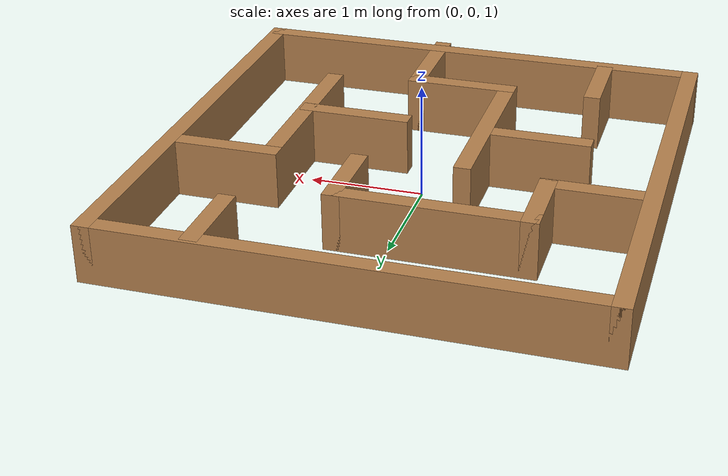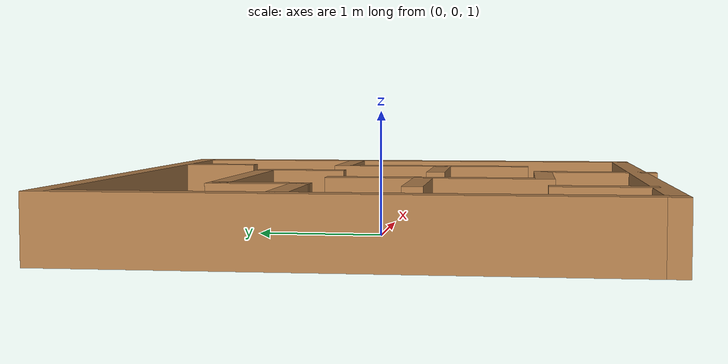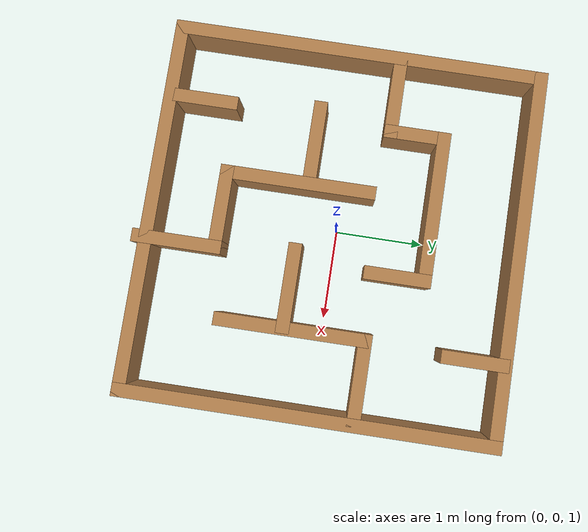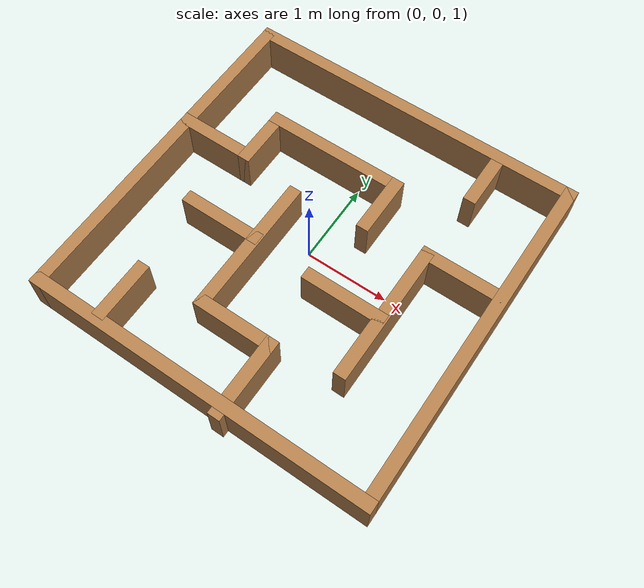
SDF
<?xml version='1.0'?>
<sdf version='1.7'>
  <model name='maze.world'>
    <pose>0.036064 -0.058671 0 0 -0 0</pose>
    <link name='Wall_12'>
      <collision name='Wall_12_Collision'>
        <geometry>
          <box>
            <size>4.25 0.15 .5</size>
          </box>
        </geometry>
        <pose>0 0 1.25 0 -0 0</pose>
      </collision>
      <visual name='Wall_12_Visual'>
        <pose>0 0 1.25 0 -0 0</pose>
        <geometry>
          <box>
            <size>4.25 0.15 .5</size>
          </box>
        </geometry>
        <material>
          <script>
            <uri>file://media/materials/scripts/gazebo.material</uri>
            <name>Gazebo/Wood</name>
          </script>
          <ambient>1 1 1 1</ambient>
        </material>
        <meta>
          <layer>0</layer>
        </meta>
      </visual>
      <pose>0 2.09 0 0 -0 0</pose>
    </link>
    <link name='Wall_13'>
      <collision name='Wall_13_Collision'>
        <geometry>
          <box>
            <size>4.25 0.15 .5</size>
          </box>
        </geometry>
        <pose>0 0 1.25 0 -0 0</pose>
      </collision>
      <visual name='Wall_13_Visual'>
        <pose>0 0 1.25 0 -0 0</pose>
        <geometry>
          <box>
            <size>4.25 0.15 .5</size>
          </box>
        </geometry>
        <material>
          <script>
            <uri>file://media/materials/scripts/gazebo.material</uri>
            <name>Gazebo/Wood</name>
          </script>
          <ambient>1 1 1 1</ambient>
        </material>
        <meta>
          <layer>0</layer>
        </meta>
      </visual>
      <pose>2.05 0.04 0 0 -0 -1.5708</pose>
    </link>
    <link name='Wall_14'>
      <collision name='Wall_14_Collision'>
        <geometry>
          <box>
            <size>4.25 0.15 .5</size>
          </box>
        </geometry>
        <pose>0 0 1.25 0 -0 0</pose>
      </collision>
      <visual name='Wall_14_Visual'>
        <pose>0 0 1.25 0 -0 0</pose>
        <geometry>
          <box>
            <size>4.25 0.15 .5</size>
          </box>
        </geometry>
        <material>
          <script>
            <uri>file://media/materials/scripts/gazebo.material</uri>
            <name>Gazebo/Wood</name>
          </script>
          <ambient>1 1 1 1</ambient>
        </material>
        <meta>
          <layer>0</layer>
        </meta>
      </visual>
      <pose>0 -2.01 0 0 -0 3.14159</pose>
    </link>
    <link name='Wall_15'>
      <collision name='Wall_15_Collision'>
        <geometry>
          <box>
            <size>4.25 0.15 .5</size>
          </box>
        </geometry>
        <pose>0 0 1.25 0 -0 0</pose>
      </collision>
      <visual name='Wall_15_Visual'>
        <pose>0 0 1.25 0 -0 0</pose>
        <geometry>
          <box>
            <size>4.25 0.15 .5</size>
          </box>
        </geometry>
        <material>
          <script>
            <uri>file://media/materials/scripts/gazebo.material</uri>
            <name>Gazebo/Wood</name>
          </script>
          <ambient>1 1 1 1</ambient>
        </material>
        <meta>
          <layer>0</layer>
        </meta>
      </visual>
      <pose>-2.05 0.04 0 0 -0 1.5708</pose>
    </link>
    <link name='Wall_22'>
      <collision name='Wall_22_Collision'>
        <geometry>
          <box>
            <size>0.75 0.15 0.5</size>
          </box>
        </geometry>
        <pose>0 0 1.25 0 -0 0</pose>
      </collision>
      <visual name='Wall_22_Visual'>
        <pose>0 0 1.25 0 -0 0</pose>
        <geometry>
          <box>
            <size>0.75 0.15 0.5</size>
          </box>
        </geometry>
        <material>
          <script>
            <uri>file://media/materials/scripts/gazebo.material</uri>
            <name>Gazebo/Wood</name>
          </script>
          <ambient>1 1 1 1</ambient>
        </material>
        <meta>
          <layer>0</layer>
        </meta>
      </visual>
      <pose>-1.26 -1.62 0 0 -0 1.5708</pose>
    </link>
    <link name='Wall_26'>
      <collision name='Wall_26_Collision'>
        <geometry>
          <box>
            <size>1.75 0.15 0.5</size>
          </box>
        </geometry>
        <pose>0 0 1.25 0 -0 0</pose>
      </collision>
      <visual name='Wall_26_Visual'>
        <pose>0 0 1.25 0 -0 0</pose>
        <geometry>
          <box>
            <size>1.75 0.15 0.5</size>
          </box>
        </geometry>
        <material>
          <script>
            <uri>file://media/materials/scripts/gazebo.material</uri>
            <name>Gazebo/Wood</name>
          </script>
          <ambient>1 1 1 1</ambient>
        </material>
        <meta>
          <layer>0</layer>
        </meta>
      </visual>
      <pose>-0.48 -0.44 0 0 -0 -1.5708</pose>
    </link>
    <link name='Wall_27'>
      <collision name='Wall_27_Collision'>
        <geometry>
          <box>
            <size>1 0.15 0.5</size>
          </box>
        </geometry>
        <pose>0 0 1.25 0 -0 0</pose>
      </collision>
      <visual name='Wall_27_Visual'>
        <pose>0 0 1.25 0 -0 0</pose>
        <geometry>
          <box>
            <size>1 0.15 0.5</size>
          </box>
        </geometry>
        <material>
          <script>
            <uri>file://media/materials/scripts/gazebo.material</uri>
            <name>Gazebo/Wood</name>
          </script>
          <ambient>1 1 1 1</ambient>
        </material>
        <meta>
          <layer>0</layer>
        </meta>
      </visual>
      <pose>-0.055 -1.24 0 0 -0 0</pose>
    </link>
    <link name='Wall_28'>
      <collision name='Wall_28_Collision'>
        <geometry>
          <box>
            <size>1 0.15 0.5</size>
          </box>
        </geometry>
        <pose>0 0 1.25 0 -0 0</pose>
      </collision>
      <visual name='Wall_28_Visual'>
        <pose>0 0 1.25 0 -0 0</pose>
        <geometry>
          <box>
            <size>1 0.15 0.5</size>
          </box>
        </geometry>
        <material>
          <script>
            <uri>file://media/materials/scripts/gazebo.material</uri>
            <name>Gazebo/Wood</name>
          </script>
          <ambient>1 1 1 1</ambient>
        </material>
        <meta>
          <layer>0</layer>
        </meta>
      </visual>
      <pose>0.37 -1.665 0 0 -0 -1.5708</pose>
    </link>
    <link name='Wall_30'>
      <collision name='Wall_30_Collision'>
        <geometry>
          <box>
            <size>1 0.15 0.5</size>
          </box>
        </geometry>
        <pose>0 0 1.25 0 -0 0</pose>
      </collision>
      <visual name='Wall_30_Visual'>
        <pose>0 0 1.25 0 -0 0</pose>
        <geometry>
          <box>
            <size>1 0.15 0.5</size>
          </box>
        </geometry>
        <material>
          <script>
            <uri>file://media/materials/scripts/gazebo.material</uri>
            <name>Gazebo/Wood</name>
          </script>
          <ambient>1 1 1 1</ambient>
        </material>
        <meta>
          <layer>0</layer>
        </meta>
      </visual>
      <pose>-0.925 -0.32 0 0 -0 0</pose>
    </link>
    <link name='Wall_32'>
      <collision name='Wall_32_Collision'>
        <geometry>
          <box>
            <size>1 0.15 0.5</size>
          </box>
        </geometry>
        <pose>0 0 1.25 0 -0 0</pose>
      </collision>
      <visual name='Wall_32_Visual'>
        <pose>0 0 1.25 0 -0 0</pose>
        <geometry>
          <box>
            <size>1 0.15 0.5</size>
          </box>
        </geometry>
        <material>
          <script>
            <uri>file://media/materials/scripts/gazebo.material</uri>
            <name>Gazebo/Wood</name>
          </script>
          <ambient>1 1 1 1</ambient>
        </material>
        <meta>
          <layer>0</layer>
        </meta>
      </visual>
      <pose>-1.625 0.5 0 0 -0 0</pose>
    </link>
    <link name='Wall_33'>
      <collision name='Wall_33_Collision'>
        <geometry>
          <box>
            <size>0.75 0.15 2.5</size>
          </box>
        </geometry>
        <pose>0 0 1.25 0 -0 0</pose>
      </collision>
      <visual name='Wall_33_Visual'>
        <pose>0 0 1.25 0 -0 0</pose>
        <geometry>
          <box>
            <size>0.75 0.15 0.5</size>
          </box>
        </geometry>
        <material>
          <script>
            <uri>file://media/materials/scripts/gazebo.material</uri>
            <name>Gazebo/Wood</name>
          </script>
          <ambient>1 1 1 1</ambient>
        </material>
        <meta>
          <layer>0</layer>
        </meta>
      </visual>
      <pose>-1.2 0.8 0 0 -0 1.5708</pose>
    </link>
    <link name='Wall_34'>
      <collision name='Wall_34_Collision'>
        <geometry>
          <box>
            <size>1.75 0.15 0.5</size>
          </box>
        </geometry>
        <pose>0 0 1.25 0 -0 0</pose>
      </collision>
      <visual name='Wall_34_Visual'>
        <pose>0 0 1.25 0 -0 0</pose>
        <geometry>
          <box>
            <size>1.75 0.15 0.5</size>
          </box>
        </geometry>
        <material>
          <script>
            <uri>file://media/materials/scripts/gazebo.material</uri>
            <name>Gazebo/Wood</name>
          </script>
          <ambient>1 1 1 1</ambient>
        </material>
        <meta>
          <layer>0</layer>
        </meta>
      </visual>
      <pose>-0.4 1.1 0 0 -0 0</pose>
    </link>
    <link name='Wall_35'>
      <collision name='Wall_35_Collision'>
        <geometry>
          <box>
            <size>0.75 0.15 0.5</size>
          </box>
        </geometry>
        <pose>0 0 1.25 0 -0 0</pose>
      </collision>
      <visual name='Wall_35_Visual'>
        <pose>0 0 1.25 0 -0 0</pose>
        <geometry>
          <box>
            <size>0.75 0.15 0.5</size>
          </box>
        </geometry>
        <material>
          <script>
            <uri>file://media/materials/scripts/gazebo.material</uri>
            <name>Gazebo/Wood</name>
          </script>
          <ambient>1 1 1 1</ambient>
        </material>
        <meta>
          <layer>0</layer>
        </meta>
      </visual>
      <pose>0.4 0.8 0 0 -0 -1.5708</pose>
    </link>
    <link name='Wall_37'>
      <collision name='Wall_37_Collision'>
        <geometry>
          <box>
            <size>0.75 0.15 0.5</size>
          </box>
        </geometry>
        <pose>0 0 1.25 0 -0 0</pose>
      </collision>
      <visual name='Wall_37_Visual'>
        <pose>0 0 1.25 0 -0 0</pose>
        <geometry>
          <box>
            <size>0.75 0.15 0.5</size>
          </box>
        </geometry>
        <material>
          <script>
            <uri>file://media/materials/scripts/gazebo.material</uri>
            <name>Gazebo/Wood</name>
          </script>
          <ambient>1 1 1 1</ambient>
        </material>
        <meta>
          <layer>0</layer>
        </meta>
      </visual>
      <pose>1.18 1.76 0 0 -0 1.5708</pose>
    </link>
    <link name='Wall_39'>
      <collision name='Wall_39_Collision'>
        <geometry>
          <box>
            <size>1.75 0.15 0.5</size>
          </box>
        </geometry>
        <pose>0 0 1.25 0 -0 0</pose>
      </collision>
      <visual name='Wall_39_Visual'>
        <pose>0 0 1.25 0 -0 0</pose>
        <geometry>
          <box>
            <size>1.75 0.15 0.5</size>
          </box>
        </geometry>
        <material>
          <script>
            <uri>file://media/materials/scripts/gazebo.material</uri>
            <name>Gazebo/Wood</name>
          </script>
          <ambient>1 1 1 1</ambient>
        </material>
        <meta>
          <layer>0</layer>
        </meta>
      </visual>
      <pose>1.14 -0.25 0 0 -0 1.5708</pose>
    </link>
    <link name='Wall_40'>
      <collision name='Wall_40_Collision'>
        <geometry>
          <box>
            <size>1 0.15 0.5</size>
          </box>
        </geometry>
        <pose>0 0 1.25 0 -0 0</pose>
      </collision>
      <visual name='Wall_40_Visual'>
        <pose>0 0 1.25 0 -0 0</pose>
        <geometry>
          <box>
            <size>1 0.15 0.5</size>
          </box>
        </geometry>
        <material>
          <script>
            <uri>file://media/materials/scripts/gazebo.material</uri>
            <name>Gazebo/Wood</name>
          </script>
          <ambient>1 1 1 1</ambient>
        </material>
        <meta>
          <layer>0</layer>
        </meta>
      </visual>
      <pose>1.565 0.55 0 0 -0 0</pose>
    </link>
    <link name='Wall_42'>
      <collision name='Wall_42_Collision'>
        <geometry>
          <box>
            <size>1 0.15 0.5</size>
          </box>
        </geometry>
        <pose>0 0 1.25 0 -0 0</pose>
      </collision>
      <visual name='Wall_42_Visual'>
        <pose>0 0 1.25 0 -0 0</pose>
        <geometry>
          <box>
            <size>1 0.15 0.5</size>
          </box>
        </geometry>
        <material>
          <script>
            <uri>file://media/materials/scripts/gazebo.material</uri>
            <name>Gazebo/Wood</name>
          </script>
          <ambient>1 1 1 1</ambient>
        </material>
        <meta>
          <layer>0</layer>
        </meta>
      </visual>
      <pose>0.695 -0.36 0 0 -0 0</pose>
    </link>
    <static>1</static>
  </model>
</sdf>
